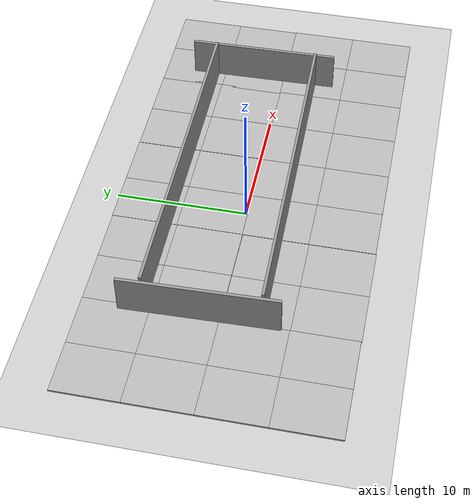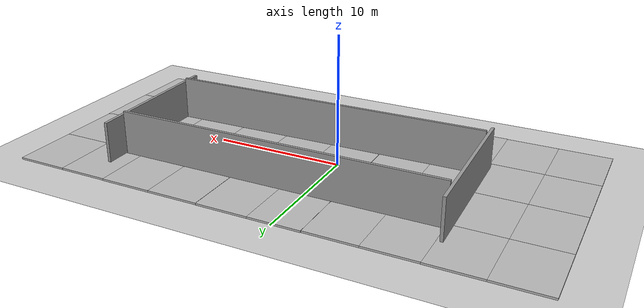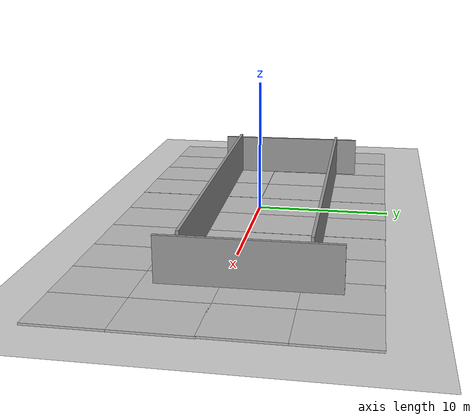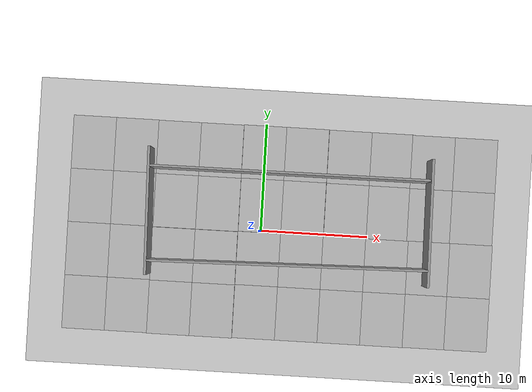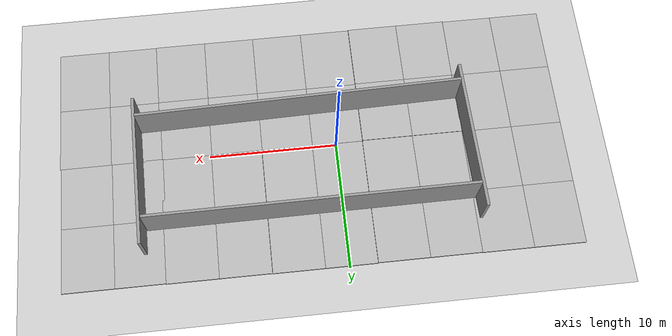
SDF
<sdf version="1.7">
 <world name="default">
  <light name="sun" type="directional">
   <pose>0 0 10 0 -0 0</pose>
   <diffuse>0.8 0.8 0.8 1</diffuse>
   <specular>0.1 0.1 0.1 1</specular>
   <attenuation>
    <range>1000</range>
    <constant>0.9</constant>
    <linear>0.01</linear>
    <quadratic>0.001</quadratic>
   </attenuation>
   <direction>-0.5 0.5 -1</direction>
   <spot><inner_angle>0</inner_angle><outer_angle>0</outer_angle><falloff>0</falloff></spot>
  </light>
  <model name="ground_plane">
   <static>1</static>
   <link name="link">
    <collision name="collision">
     <geometry><plane><normal>0 0 1</normal><size>100 100</size></plane></geometry>
     <surface><friction><ode><mu>100</mu><mu2>50</mu2></ode></friction></surface>
    </collision>
    <visual name="visual">
     <cast_shadows>0</cast_shadows>
     <geometry><plane><normal>0 0 1</normal><size>100 100</size></plane></geometry>
     <material>
      <script><uri>file://media/materials/scripts/gazebo.material</uri><name>Gazebo/Grey</name></script>
     </material>
    </visual>
   </link>
  </model>
  <gravity>0 0 -9.8</gravity>
  <magnetic_field>6e-06 2.3e-05 -4.2e-05</magnetic_field>
  <atmosphere type="adiabatic"/>
  <physics name="default_physics" default="0" type="ode">
   <max_step_size>0.001</max_step_size>
   <real_time_factor>1</real_time_factor>
   <real_time_update_rate>1000</real_time_update_rate>
  </physics>
  <scene><ambient>0.4 0.4 0.4 1</ambient><background>0.7 0.7 0.7 1</background><shadows>1</shadows></scene>
  <spherical_coordinates>
   <surface_model>EARTH_WGS84</surface_model>
   <latitude_deg>0</latitude_deg>
   <longitude_deg>0</longitude_deg>
   <elevation>0</elevation>
   <heading_deg>0</heading_deg>
  </spherical_coordinates>
  <model name="mud_box">
   <static>1</static>
   <link name="link">
    <collision name="collision"><geometry><box><size>8 10 0.2</size></box></geometry></collision>
    <visual name="visual_1">
     <pose>-2 2.5 0 0 -0 0</pose>
     <cast_shadows>0</cast_shadows>
     <geometry><box><size>4 5 0.2</size></box></geometry>
     <material>
      <script>
       <uri>model://mud_box/materials/scripts</uri>
       <uri>model://mud_box/materials/textures</uri>
       <name>vrc/mud</name>
      </script>
     </material>
    </visual>
    <visual name="visual_2">
     <pose>2 2.5 0 0 -0 0</pose>
     <cast_shadows>0</cast_shadows>
     <geometry><box><size>4 5 0.2</size></box></geometry>
     <material>
      <script>
       <uri>model://mud_box/materials/scripts</uri>
       <uri>model://mud_box/materials/textures</uri>
       <name>vrc/mud</name>
      </script>
     </material>
    </visual>
    <visual name="visual_3">
     <pose>2 -2.5 0 0 -0 0</pose>
     <cast_shadows>0</cast_shadows>
     <geometry><box><size>4 5 0.2</size></box></geometry>
     <material>
      <script>
       <uri>model://mud_box/materials/scripts</uri>
       <uri>model://mud_box/materials/textures</uri>
       <name>vrc/mud</name>
      </script>
     </material>
    </visual>
    <visual name="visual_4">
     <pose>-2 -2.5 0 0 -0 0</pose>
     <cast_shadows>0</cast_shadows>
     <geometry><box><size>4 5 0.2</size></box></geometry>
     <material>
      <script>
       <uri>model://mud_box/materials/scripts</uri>
       <uri>model://mud_box/materials/textures</uri>
       <name>vrc/mud</name>
      </script>
     </material>
    </visual>
   </link>
   <pose>-6.14197 4.82693 0 0 -0 0</pose>
  </model>
  <model name="mud_box_0">
   <static>1</static>
   <link name="link">
    <collision name="collision"><geometry><box><size>8 10 0.2</size></box></geometry></collision>
    <visual name="visual_1">
     <pose>-2 2.5 0 0 -0 0</pose>
     <cast_shadows>0</cast_shadows>
     <geometry><box><size>4 5 0.2</size></box></geometry>
     <material>
      <script>
       <uri>model://mud_box/materials/scripts</uri>
       <uri>model://mud_box/materials/textures</uri>
       <name>vrc/mud</name>
      </script>
     </material>
    </visual>
    <visual name="visual_2">
     <pose>2 2.5 0 0 -0 0</pose>
     <cast_shadows>0</cast_shadows>
     <geometry><box><size>4 5 0.2</size></box></geometry>
     <material>
      <script>
       <uri>model://mud_box/materials/scripts</uri>
       <uri>model://mud_box/materials/textures</uri>
       <name>vrc/mud</name>
      </script>
     </material>
    </visual>
    <visual name="visual_3">
     <pose>2 -2.5 0 0 -0 0</pose>
     <cast_shadows>0</cast_shadows>
     <geometry><box><size>4 5 0.2</size></box></geometry>
     <material>
      <script>
       <uri>model://mud_box/materials/scripts</uri>
       <uri>model://mud_box/materials/textures</uri>
       <name>vrc/mud</name>
      </script>
     </material>
    </visual>
    <visual name="visual_4">
     <pose>-2 -2.5 0 0 -0 0</pose>
     <cast_shadows>0</cast_shadows>
     <geometry><box><size>4 5 0.2</size></box></geometry>
     <material>
      <script>
       <uri>model://mud_box/materials/scripts</uri>
       <uri>model://mud_box/materials/textures</uri>
       <name>vrc/mud</name>
      </script>
     </material>
    </visual>
   </link>
   <pose>1.86991 4.86177 0 0 -0 0</pose>
  </model>
  <model name="mud_box_1">
   <static>1</static>
   <link name="link">
    <collision name="collision"><geometry><box><size>8 10 0.2</size></box></geometry></collision>
    <visual name="visual_1">
     <pose>-2 2.5 0 0 -0 0</pose>
     <cast_shadows>0</cast_shadows>
     <geometry><box><size>4 5 0.2</size></box></geometry>
     <material>
      <script>
       <uri>model://mud_box/materials/scripts</uri>
       <uri>model://mud_box/materials/textures</uri>
       <name>vrc/mud</name>
      </script>
     </material>
    </visual>
    <visual name="visual_2">
     <pose>2 2.5 0 0 -0 0</pose>
     <cast_shadows>0</cast_shadows>
     <geometry><box><size>4 5 0.2</size></box></geometry>
     <material>
      <script>
       <uri>model://mud_box/materials/scripts</uri>
       <uri>model://mud_box/materials/textures</uri>
       <name>vrc/mud</name>
      </script>
     </material>
    </visual>
    <visual name="visual_3">
     <pose>2 -2.5 0 0 -0 0</pose>
     <cast_shadows>0</cast_shadows>
     <geometry><box><size>4 5 0.2</size></box></geometry>
     <material>
      <script>
       <uri>model://mud_box/materials/scripts</uri>
       <uri>model://mud_box/materials/textures</uri>
       <name>vrc/mud</name>
      </script>
     </material>
    </visual>
    <visual name="visual_4">
     <pose>-2 -2.5 0 0 -0 0</pose>
     <cast_shadows>0</cast_shadows>
     <geometry><box><size>4 5 0.2</size></box></geometry>
     <material>
      <script>
       <uri>model://mud_box/materials/scripts</uri>
       <uri>model://mud_box/materials/textures</uri>
       <name>vrc/mud</name>
      </script>
     </material>
    </visual>
   </link>
   <pose>-6.1642 -5.19353 0 0 -0 0</pose>
  </model>
  <model name="mud_box_2">
   <static>1</static>
   <link name="link">
    <collision name="collision"><geometry><box><size>8 10 0.2</size></box></geometry></collision>
    <visual name="visual_1">
     <pose>-2 2.5 0 0 -0 0</pose>
     <cast_shadows>0</cast_shadows>
     <geometry><box><size>4 5 0.2</size></box></geometry>
     <material>
      <script>
       <uri>model://mud_box/materials/scripts</uri>
       <uri>model://mud_box/materials/textures</uri>
       <name>vrc/mud</name>
      </script>
     </material>
    </visual>
    <visual name="visual_2">
     <pose>2 2.5 0 0 -0 0</pose>
     <cast_shadows>0</cast_shadows>
     <geometry><box><size>4 5 0.2</size></box></geometry>
     <material>
      <script>
       <uri>model://mud_box/materials/scripts</uri>
       <uri>model://mud_box/materials/textures</uri>
       <name>vrc/mud</name>
      </script>
     </material>
    </visual>
    <visual name="visual_3">
     <pose>2 -2.5 0 0 -0 0</pose>
     <cast_shadows>0</cast_shadows>
     <geometry><box><size>4 5 0.2</size></box></geometry>
     <material>
      <script>
       <uri>model://mud_box/materials/scripts</uri>
       <uri>model://mud_box/materials/textures</uri>
       <name>vrc/mud</name>
      </script>
     </material>
    </visual>
    <visual name="visual_4">
     <pose>-2 -2.5 0 0 -0 0</pose>
     <cast_shadows>0</cast_shadows>
     <geometry><box><size>4 5 0.2</size></box></geometry>
     <material>
      <script>
       <uri>model://mud_box/materials/scripts</uri>
       <uri>model://mud_box/materials/textures</uri>
       <name>vrc/mud</name>
      </script>
     </material>
    </visual>
   </link>
   <pose>1.85975 -5.14192 0 0 -0 0</pose>
  </model>
  <model name="mud_box_0_clone">
   <static>1</static>
   <link name="link">
    <collision name="collision"><geometry><box><size>8 10 0.2</size></box></geometry></collision>
    <visual name="visual_1">
     <pose>-2 2.5 0 0 -0 0</pose>
     <cast_shadows>0</cast_shadows>
     <geometry><box><size>4 5 0.2</size></box></geometry>
     <material>
      <script>
       <uri>model://mud_box/materials/scripts</uri>
       <uri>model://mud_box/materials/textures</uri>
       <name>vrc/mud</name>
      </script>
     </material>
    </visual>
    <visual name="visual_2">
     <pose>2 2.5 0 0 -0 0</pose>
     <cast_shadows>0</cast_shadows>
     <geometry><box><size>4 5 0.2</size></box></geometry>
     <material>
      <script>
       <uri>model://mud_box/materials/scripts</uri>
       <uri>model://mud_box/materials/textures</uri>
       <name>vrc/mud</name>
      </script>
     </material>
    </visual>
    <visual name="visual_3">
     <pose>2 -2.5 0 0 -0 0</pose>
     <cast_shadows>0</cast_shadows>
     <geometry><box><size>4 5 0.2</size></box></geometry>
     <material>
      <script>
       <uri>model://mud_box/materials/scripts</uri>
       <uri>model://mud_box/materials/textures</uri>
       <name>vrc/mud</name>
      </script>
     </material>
    </visual>
    <visual name="visual_4">
     <pose>-2 -2.5 0 0 -0 0</pose>
     <cast_shadows>0</cast_shadows>
     <geometry><box><size>4 5 0.2</size></box></geometry>
     <material>
      <script>
       <uri>model://mud_box/materials/scripts</uri>
       <uri>model://mud_box/materials/textures</uri>
       <name>vrc/mud</name>
      </script>
     </material>
    </visual>
   </link>
   <pose>9.85757 -5.14216 0 0 -0 0</pose>
  </model>
  <model name="mud_box_0_clone_clone">
   <static>1</static>
   <link name="link">
    <collision name="collision"><geometry><box><size>8 10 0.2</size></box></geometry></collision>
    <visual name="visual_1">
     <pose>-2 2.5 0 0 -0 0</pose>
     <cast_shadows>0</cast_shadows>
     <geometry><box><size>4 5 0.2</size></box></geometry>
     <material>
      <script>
       <uri>model://mud_box/materials/scripts</uri>
       <uri>model://mud_box/materials/textures</uri>
       <name>vrc/mud</name>
      </script>
     </material>
    </visual>
    <visual name="visual_2">
     <pose>2 2.5 0 0 -0 0</pose>
     <cast_shadows>0</cast_shadows>
     <geometry><box><size>4 5 0.2</size></box></geometry>
     <material>
      <script>
       <uri>model://mud_box/materials/scripts</uri>
       <uri>model://mud_box/materials/textures</uri>
       <name>vrc/mud</name>
      </script>
     </material>
    </visual>
    <visual name="visual_3">
     <pose>2 -2.5 0 0 -0 0</pose>
     <cast_shadows>0</cast_shadows>
     <geometry><box><size>4 5 0.2</size></box></geometry>
     <material>
      <script>
       <uri>model://mud_box/materials/scripts</uri>
       <uri>model://mud_box/materials/textures</uri>
       <name>vrc/mud</name>
      </script>
     </material>
    </visual>
    <visual name="visual_4">
     <pose>-2 -2.5 0 0 -0 0</pose>
     <cast_shadows>0</cast_shadows>
     <geometry><box><size>4 5 0.2</size></box></geometry>
     <material>
      <script>
       <uri>model://mud_box/materials/scripts</uri>
       <uri>model://mud_box/materials/textures</uri>
       <name>vrc/mud</name>
      </script>
     </material>
    </visual>
   </link>
   <pose>17.7661 -5.12084 0 0 -0 0</pose>
  </model>
  <model name="mud_box_0_clone_clone_0">
   <static>1</static>
   <link name="link">
    <collision name="collision"><geometry><box><size>8 10 0.2</size></box></geometry></collision>
    <visual name="visual_1">
     <pose>-2 2.5 0 0 -0 0</pose>
     <cast_shadows>0</cast_shadows>
     <geometry><box><size>4 5 0.2</size></box></geometry>
     <material>
      <script>
       <uri>model://mud_box/materials/scripts</uri>
       <uri>model://mud_box/materials/textures</uri>
       <name>vrc/mud</name>
      </script>
     </material>
    </visual>
    <visual name="visual_2">
     <pose>2 2.5 0 0 -0 0</pose>
     <cast_shadows>0</cast_shadows>
     <geometry><box><size>4 5 0.2</size></box></geometry>
     <material>
      <script>
       <uri>model://mud_box/materials/scripts</uri>
       <uri>model://mud_box/materials/textures</uri>
       <name>vrc/mud</name>
      </script>
     </material>
    </visual>
    <visual name="visual_3">
     <pose>2 -2.5 0 0 -0 0</pose>
     <cast_shadows>0</cast_shadows>
     <geometry><box><size>4 5 0.2</size></box></geometry>
     <material>
      <script>
       <uri>model://mud_box/materials/scripts</uri>
       <uri>model://mud_box/materials/textures</uri>
       <name>vrc/mud</name>
      </script>
     </material>
    </visual>
    <visual name="visual_4">
     <pose>-2 -2.5 0 0 -0 0</pose>
     <cast_shadows>0</cast_shadows>
     <geometry><box><size>4 5 0.2</size></box></geometry>
     <material>
      <script>
       <uri>model://mud_box/materials/scripts</uri>
       <uri>model://mud_box/materials/textures</uri>
       <name>vrc/mud</name>
      </script>
     </material>
    </visual>
   </link>
   <pose>17.7123 4.80571 0 0 -0 0</pose>
  </model>
  <model name="mud_box_0_clone_clone_1">
   <static>1</static>
   <link name="link">
    <collision name="collision"><geometry><box><size>8 10 0.2</size></box></geometry></collision>
    <visual name="visual_1">
     <pose>-2 2.5 0 0 -0 0</pose>
     <cast_shadows>0</cast_shadows>
     <geometry><box><size>4 5 0.2</size></box></geometry>
     <material>
      <script>
       <uri>model://mud_box/materials/scripts</uri>
       <uri>model://mud_box/materials/textures</uri>
       <name>vrc/mud</name>
      </script>
     </material>
    </visual>
    <visual name="visual_2">
     <pose>2 2.5 0 0 -0 0</pose>
     <cast_shadows>0</cast_shadows>
     <geometry><box><size>4 5 0.2</size></box></geometry>
     <material>
      <script>
       <uri>model://mud_box/materials/scripts</uri>
       <uri>model://mud_box/materials/textures</uri>
       <name>vrc/mud</name>
      </script>
     </material>
    </visual>
    <visual name="visual_3">
     <pose>2 -2.5 0 0 -0 0</pose>
     <cast_shadows>0</cast_shadows>
     <geometry><box><size>4 5 0.2</size></box></geometry>
     <material>
      <script>
       <uri>model://mud_box/materials/scripts</uri>
       <uri>model://mud_box/materials/textures</uri>
       <name>vrc/mud</name>
      </script>
     </material>
    </visual>
    <visual name="visual_4">
     <pose>-2 -2.5 0 0 -0 0</pose>
     <cast_shadows>0</cast_shadows>
     <geometry><box><size>4 5 0.2</size></box></geometry>
     <material>
      <script>
       <uri>model://mud_box/materials/scripts</uri>
       <uri>model://mud_box/materials/textures</uri>
       <name>vrc/mud</name>
      </script>
     </material>
    </visual>
   </link>
   <pose>-14.1276 -5.15209 0 0 -0 0</pose>
  </model>
  <model name="mud_box_0_clone_clone_2">
   <static>1</static>
   <link name="link">
    <collision name="collision"><geometry><box><size>8 10 0.2</size></box></geometry></collision>
    <visual name="visual_1">
     <pose>-2 2.5 0 0 -0 0</pose>
     <cast_shadows>0</cast_shadows>
     <geometry><box><size>4 5 0.2</size></box></geometry>
     <material>
      <script>
       <uri>model://mud_box/materials/scripts</uri>
       <uri>model://mud_box/materials/textures</uri>
       <name>vrc/mud</name>
      </script>
     </material>
    </visual>
    <visual name="visual_2">
     <pose>2 2.5 0 0 -0 0</pose>
     <cast_shadows>0</cast_shadows>
     <geometry><box><size>4 5 0.2</size></box></geometry>
     <material>
      <script>
       <uri>model://mud_box/materials/scripts</uri>
       <uri>model://mud_box/materials/textures</uri>
       <name>vrc/mud</name>
      </script>
     </material>
    </visual>
    <visual name="visual_3">
     <pose>2 -2.5 0 0 -0 0</pose>
     <cast_shadows>0</cast_shadows>
     <geometry><box><size>4 5 0.2</size></box></geometry>
     <material>
      <script>
       <uri>model://mud_box/materials/scripts</uri>
       <uri>model://mud_box/materials/textures</uri>
       <name>vrc/mud</name>
      </script>
     </material>
    </visual>
    <visual name="visual_4">
     <pose>-2 -2.5 0 0 -0 0</pose>
     <cast_shadows>0</cast_shadows>
     <geometry><box><size>4 5 0.2</size></box></geometry>
     <material>
      <script>
       <uri>model://mud_box/materials/scripts</uri>
       <uri>model://mud_box/materials/textures</uri>
       <name>vrc/mud</name>
      </script>
     </material>
    </visual>
   </link>
   <pose>-14.1258 4.84756 0 0 -0 0</pose>
  </model>
  <model name="mud_box_3">
   <static>1</static>
   <link name="link">
    <collision name="collision"><geometry><box><size>8 10 0.2</size></box></geometry></collision>
    <visual name="visual_1">
     <pose>-2 2.5 0 0 -0 0</pose>
     <cast_shadows>0</cast_shadows>
     <geometry><box><size>4 5 0.2</size></box></geometry>
     <material>
      <script>
       <uri>model://mud_box/materials/scripts</uri>
       <uri>model://mud_box/materials/textures</uri>
       <name>vrc/mud</name>
      </script>
     </material>
    </visual>
    <visual name="visual_2">
     <pose>2 2.5 0 0 -0 0</pose>
     <cast_shadows>0</cast_shadows>
     <geometry><box><size>4 5 0.2</size></box></geometry>
     <material>
      <script>
       <uri>model://mud_box/materials/scripts</uri>
       <uri>model://mud_box/materials/textures</uri>
       <name>vrc/mud</name>
      </script>
     </material>
    </visual>
    <visual name="visual_3">
     <pose>2 -2.5 0 0 -0 0</pose>
     <cast_shadows>0</cast_shadows>
     <geometry><box><size>4 5 0.2</size></box></geometry>
     <material>
      <script>
       <uri>model://mud_box/materials/scripts</uri>
       <uri>model://mud_box/materials/textures</uri>
       <name>vrc/mud</name>
      </script>
     </material>
    </visual>
    <visual name="visual_4">
     <pose>-2 -2.5 0 0 -0 0</pose>
     <cast_shadows>0</cast_shadows>
     <geometry><box><size>4 5 0.2</size></box></geometry>
     <material>
      <script>
       <uri>model://mud_box/materials/scripts</uri>
       <uri>model://mud_box/materials/textures</uri>
       <name>vrc/mud</name>
      </script>
     </material>
    </visual>
   </link>
   <pose>9.89239 4.83674 0 0 -0 0</pose>
  </model>
  <model name="unit_box">
   <pose>-10.3442 1.28496 1.67363 -6e-06 5e-06 0.024776</pose>
   <link name="link">
    <inertial>
     <mass>1</mass>
     <inertia>
      <ixx>0.166667</ixx>
      <ixy>0</ixy>
      <ixz>0</ixz>
      <iyy>0.166667</iyy>
      <iyz>0</iyz>
      <izz>0.166667</izz>
     </inertia>
    </inertial>
    <collision name="collision"><geometry><box><size>0.235383 11.6846 3.14728</size></box></geometry></collision>
    <visual name="visual">
     <geometry><box><size>0.235383 11.6846 3.14728</size></box></geometry>
     <material>
      <script><name>Gazebo/Grey</name><uri>file://media/materials/scripts/gazebo.material</uri></script>
     </material>
    </visual>
   </link>
  </model>
  <model name="unit_box_0">
   <pose>2.60316 -2.96403 1.80909 -1e-06 -4e-06 0.019934</pose>
   <link name="link">
    <inertial>
     <mass>1</mass>
     <inertia>
      <ixx>0.166667</ixx>
      <ixy>0</ixy>
      <ixz>0</ixz>
      <iyy>0.166667</iyy>
      <iyz>0</iyz>
      <izz>0.166667</izz>
     </inertia>
    </inertial>
    <collision name="collision"><geometry><box><size>25.4323 0.207493 3.41822</size></box></geometry></collision>
    <visual name="visual">
     <geometry><box><size>25.4323 0.207493 3.41822</size></box></geometry>
     <material>
      <script><name>Gazebo/Grey</name><uri>file://media/materials/scripts/gazebo.material</uri></script>
     </material>
    </visual>
   </link>
  </model>
  <model name="unit_box_0_clone">
   <pose>2.41858 5.40084 1.80902 5e-06 2e-05 0.003511</pose>
   <link name="link">
    <inertial>
     <mass>1</mass>
     <inertia>
      <ixx>0.166667</ixx>
      <ixy>0</ixy>
      <ixz>0</ixz>
      <iyy>0.166667</iyy>
      <iyz>0</iyz>
      <izz>0.166667</izz>
     </inertia>
    </inertial>
    <collision name="collision"><geometry><box><size>25.4323 0.207493 3.41822</size></box></geometry></collision>
    <visual name="visual">
     <geometry><box><size>25.4323 0.207493 3.41822</size></box></geometry>
     <material>
      <script><name>Gazebo/Grey</name><uri>file://media/materials/scripts/gazebo.material</uri></script>
     </material>
    </visual>
   </link>
  </model>
  <model name="unit_box_clone">
   <pose>15.3747 1.58119 1.67364 1e-06 2e-06 0.014081</pose>
   <link name="link">
    <inertial>
     <mass>1</mass>
     <inertia>
      <ixx>0.166667</ixx>
      <ixy>0</ixy>
      <ixz>0</ixz>
      <iyy>0.166667</iyy>
      <iyz>0</iyz>
      <izz>0.166667</izz>
     </inertia>
    </inertial>
    <collision name="collision"><geometry><box><size>0.235383 11.6846 3.14728</size></box></geometry></collision>
    <visual name="visual">
     <geometry><box><size>0.235383 11.6846 3.14728</size></box></geometry>
     <material>
      <script><name>Gazebo/Grey</name><uri>file://media/materials/scripts/gazebo.material</uri></script>
     </material>
    </visual>
   </link>
  </model>
 </world>
</sdf>
